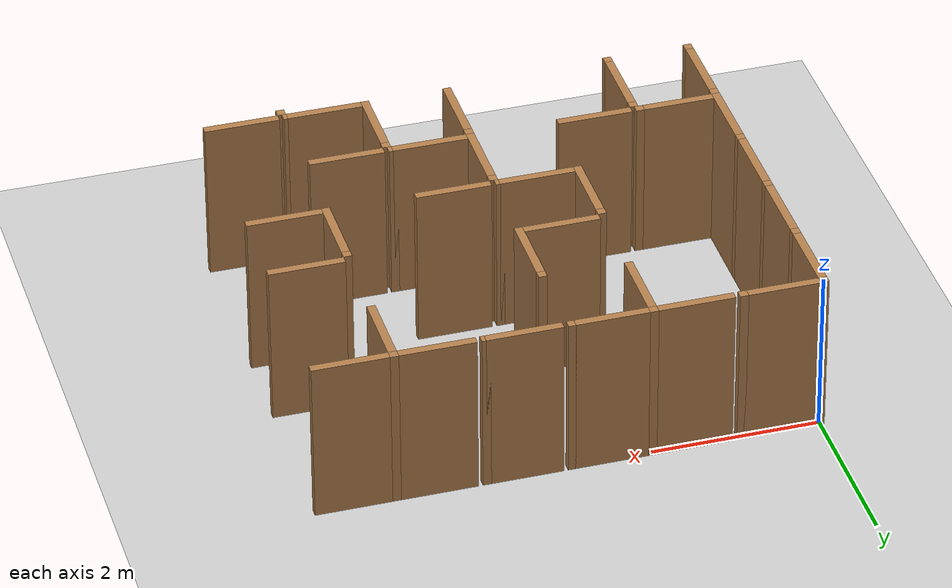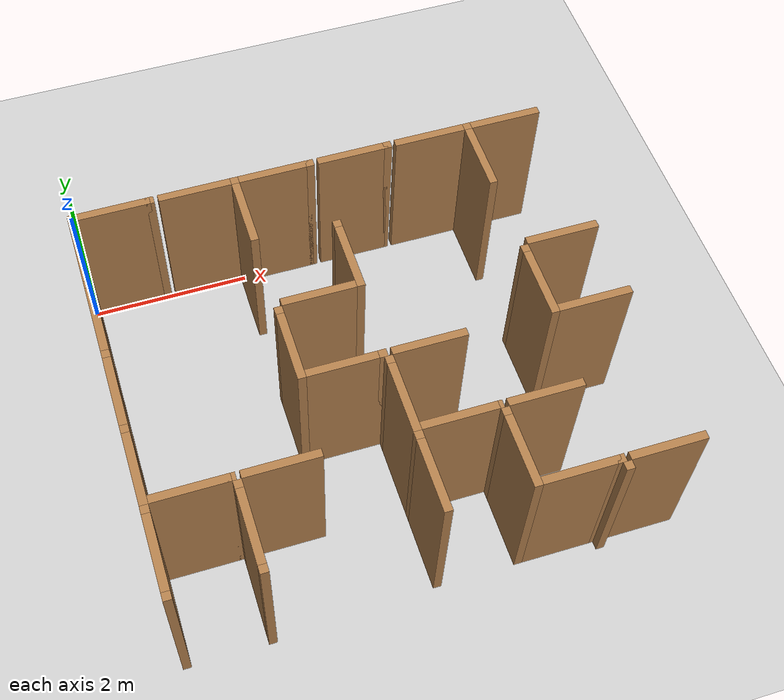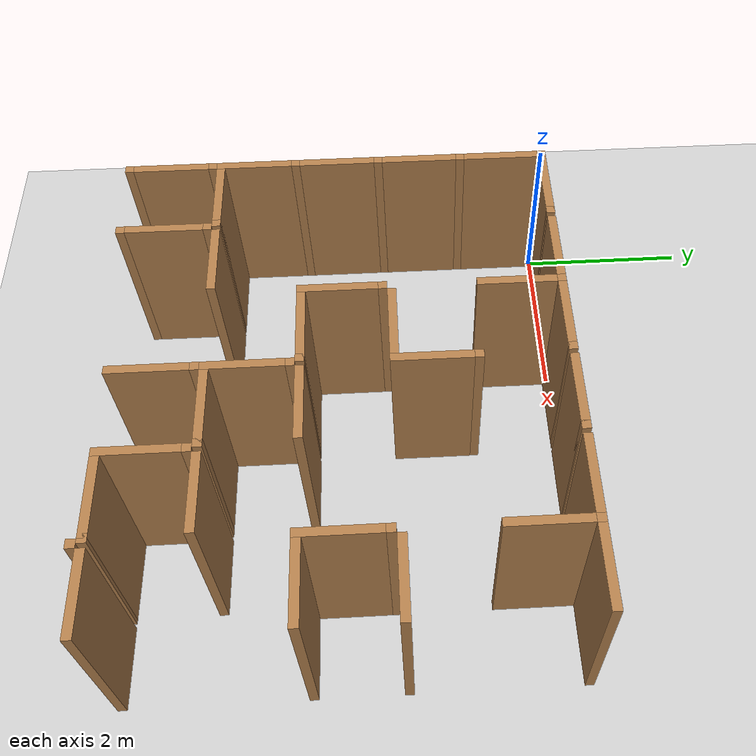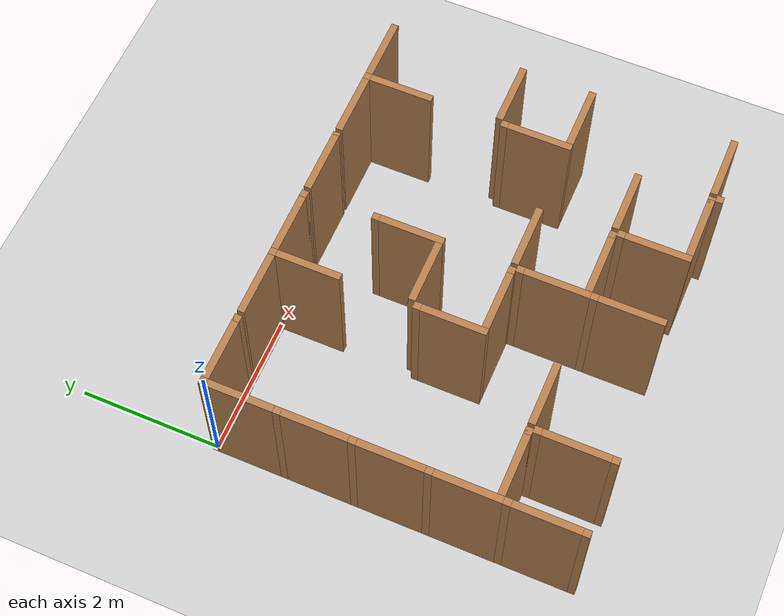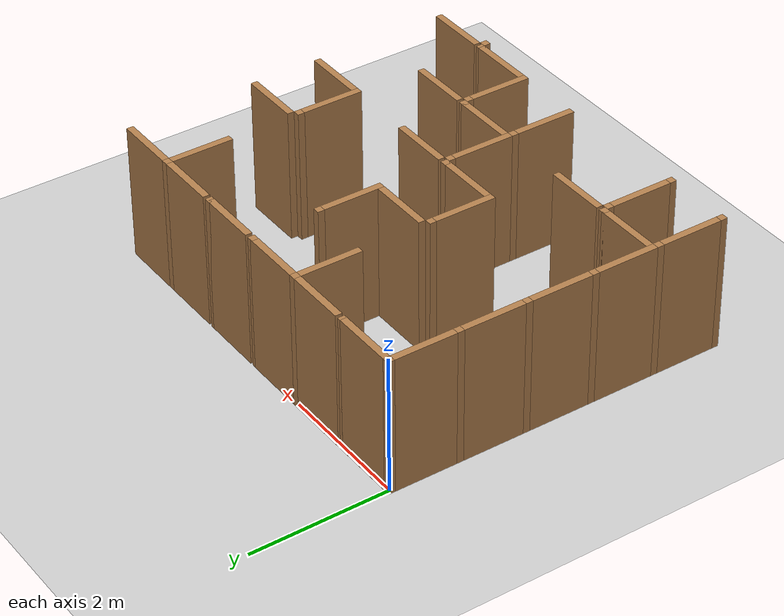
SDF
<sdf version="1.6">
 <world name="default">
  <include><uri>model://sun</uri></include>
  <model name="ground_plane">
   <static>true</static>
   <link name="link">
    <collision name="collision"><geometry><plane><size>12.0 12.0</size></plane></geometry></collision>
    <visual name="visual">
     <cast_shadows>false</cast_shadows>
     <geometry><plane><size>12.0 12.0</size></plane></geometry>
     <material>
      <script><uri>file://media/materials/scripts/gazebo.material</uri><name>Gazebo/Grey</name></script>
     </material>
    </visual>
   </link>
   <pose>6.0 -6.0 0 0 0 0</pose>
  </model>
  <model name="vwall_0_0">
   <pose>0.0 -0.5 1.0 0 0 0</pose>
   <link name="link">
    <collision name="collision"><geometry><box><size>0.1 0.9 2</size></box></geometry></collision>
    <visual name="visual">
     <geometry><box><size>0.1 0.9 2</size></box></geometry>
     <material>
      <script><uri>file://media/materials/scripts/gazebo.material</uri><name>Gazebo/Wood</name></script>
     </material>
    </visual>
   </link>
  </model>
  <model name="joint_0.0_0.0">
   <pose>0.0 0.0 1.0 0 0 0</pose>
   <link name="link">
    <collision name="collision"><geometry><box><size>0.1 0.1 2</size></box></geometry></collision>
    <visual name="visual">
     <geometry><box><size>0.1 0.1 2</size></box></geometry>
     <material>
      <script><uri>file://media/materials/scripts/gazebo.material</uri><name>Gazebo/Wood</name></script>
     </material>
    </visual>
   </link>
  </model>
  <model name="vwall_0_2">
   <pose>2.0 -0.5 1.0 0 0 0</pose>
   <link name="link">
    <collision name="collision"><geometry><box><size>0.1 0.9 2</size></box></geometry></collision>
    <visual name="visual">
     <geometry><box><size>0.1 0.9 2</size></box></geometry>
     <material>
      <script><uri>file://media/materials/scripts/gazebo.material</uri><name>Gazebo/Wood</name></script>
     </material>
    </visual>
   </link>
  </model>
  <model name="joint_2.0_0.0">
   <pose>2.0 0.0 1.0 0 0 0</pose>
   <link name="link">
    <collision name="collision"><geometry><box><size>0.1 0.1 2</size></box></geometry></collision>
    <visual name="visual">
     <geometry><box><size>0.1 0.1 2</size></box></geometry>
     <material>
      <script><uri>file://media/materials/scripts/gazebo.material</uri><name>Gazebo/Wood</name></script>
     </material>
    </visual>
   </link>
  </model>
  <model name="vwall_0_5">
   <pose>5.0 -0.5 1.0 0 0 0</pose>
   <link name="link">
    <collision name="collision"><geometry><box><size>0.1 0.9 2</size></box></geometry></collision>
    <visual name="visual">
     <geometry><box><size>0.1 0.9 2</size></box></geometry>
     <material>
      <script><uri>file://media/materials/scripts/gazebo.material</uri><name>Gazebo/Wood</name></script>
     </material>
    </visual>
   </link>
  </model>
  <model name="joint_5.0_0.0">
   <pose>5.0 0.0 1.0 0 0 0</pose>
   <link name="link">
    <collision name="collision"><geometry><box><size>0.1 0.1 2</size></box></geometry></collision>
    <visual name="visual">
     <geometry><box><size>0.1 0.1 2</size></box></geometry>
     <material>
      <script><uri>file://media/materials/scripts/gazebo.material</uri><name>Gazebo/Wood</name></script>
     </material>
    </visual>
   </link>
  </model>
  <model name="vwall_1_0">
   <pose>0.0 -1.5 1.0 0 0 0</pose>
   <link name="link">
    <collision name="collision"><geometry><box><size>0.1 0.9 2</size></box></geometry></collision>
    <visual name="visual">
     <geometry><box><size>0.1 0.9 2</size></box></geometry>
     <material>
      <script><uri>file://media/materials/scripts/gazebo.material</uri><name>Gazebo/Wood</name></script>
     </material>
    </visual>
   </link>
  </model>
  <model name="joint_0.0_-1.0">
   <pose>0.0 -1.0 1.0 0 0 0</pose>
   <link name="link">
    <collision name="collision"><geometry><box><size>0.1 0.1 2</size></box></geometry></collision>
    <visual name="visual">
     <geometry><box><size>0.1 0.1 2</size></box></geometry>
     <material>
      <script><uri>file://media/materials/scripts/gazebo.material</uri><name>Gazebo/Wood</name></script>
     </material>
    </visual>
   </link>
  </model>
  <model name="vwall_1_3">
   <pose>3.0 -1.5 1.0 0 0 0</pose>
   <link name="link">
    <collision name="collision"><geometry><box><size>0.1 0.9 2</size></box></geometry></collision>
    <visual name="visual">
     <geometry><box><size>0.1 0.9 2</size></box></geometry>
     <material>
      <script><uri>file://media/materials/scripts/gazebo.material</uri><name>Gazebo/Wood</name></script>
     </material>
    </visual>
   </link>
  </model>
  <model name="joint_3.0_-1.0">
   <pose>3.0 -1.0 1.0 0 0 0</pose>
   <link name="link">
    <collision name="collision"><geometry><box><size>0.1 0.1 2</size></box></geometry></collision>
    <visual name="visual">
     <geometry><box><size>0.1 0.1 2</size></box></geometry>
     <material>
      <script><uri>file://media/materials/scripts/gazebo.material</uri><name>Gazebo/Wood</name></script>
     </material>
    </visual>
   </link>
  </model>
  <model name="vwall_2_0">
   <pose>0.0 -2.5 1.0 0 0 0</pose>
   <link name="link">
    <collision name="collision"><geometry><box><size>0.1 0.9 2</size></box></geometry></collision>
    <visual name="visual">
     <geometry><box><size>0.1 0.9 2</size></box></geometry>
     <material>
      <script><uri>file://media/materials/scripts/gazebo.material</uri><name>Gazebo/Wood</name></script>
     </material>
    </visual>
   </link>
  </model>
  <model name="joint_0.0_-2.0">
   <pose>0.0 -2.0 1.0 0 0 0</pose>
   <link name="link">
    <collision name="collision"><geometry><box><size>0.1 0.1 2</size></box></geometry></collision>
    <visual name="visual">
     <geometry><box><size>0.1 0.1 2</size></box></geometry>
     <material>
      <script><uri>file://media/materials/scripts/gazebo.material</uri><name>Gazebo/Wood</name></script>
     </material>
    </visual>
   </link>
  </model>
  <model name="vwall_2_2">
   <pose>2.0 -2.5 1.0 0 0 0</pose>
   <link name="link">
    <collision name="collision"><geometry><box><size>0.1 0.9 2</size></box></geometry></collision>
    <visual name="visual">
     <geometry><box><size>0.1 0.9 2</size></box></geometry>
     <material>
      <script><uri>file://media/materials/scripts/gazebo.material</uri><name>Gazebo/Wood</name></script>
     </material>
    </visual>
   </link>
  </model>
  <model name="joint_2.0_-2.0">
   <pose>2.0 -2.0 1.0 0 0 0</pose>
   <link name="link">
    <collision name="collision"><geometry><box><size>0.1 0.1 2</size></box></geometry></collision>
    <visual name="visual">
     <geometry><box><size>0.1 0.1 2</size></box></geometry>
     <material>
      <script><uri>file://media/materials/scripts/gazebo.material</uri><name>Gazebo/Wood</name></script>
     </material>
    </visual>
   </link>
  </model>
  <model name="vwall_2_5">
   <pose>5.0 -2.5 1.0 0 0 0</pose>
   <link name="link">
    <collision name="collision"><geometry><box><size>0.1 0.9 2</size></box></geometry></collision>
    <visual name="visual">
     <geometry><box><size>0.1 0.9 2</size></box></geometry>
     <material>
      <script><uri>file://media/materials/scripts/gazebo.material</uri><name>Gazebo/Wood</name></script>
     </material>
    </visual>
   </link>
  </model>
  <model name="joint_5.0_-2.0">
   <pose>5.0 -2.0 1.0 0 0 0</pose>
   <link name="link">
    <collision name="collision"><geometry><box><size>0.1 0.1 2</size></box></geometry></collision>
    <visual name="visual">
     <geometry><box><size>0.1 0.1 2</size></box></geometry>
     <material>
      <script><uri>file://media/materials/scripts/gazebo.material</uri><name>Gazebo/Wood</name></script>
     </material>
    </visual>
   </link>
  </model>
  <model name="vwall_3_0">
   <pose>0.0 -3.5 1.0 0 0 0</pose>
   <link name="link">
    <collision name="collision"><geometry><box><size>0.1 0.9 2</size></box></geometry></collision>
    <visual name="visual">
     <geometry><box><size>0.1 0.9 2</size></box></geometry>
     <material>
      <script><uri>file://media/materials/scripts/gazebo.material</uri><name>Gazebo/Wood</name></script>
     </material>
    </visual>
   </link>
  </model>
  <model name="joint_0.0_-3.0">
   <pose>0.0 -3.0 1.0 0 0 0</pose>
   <link name="link">
    <collision name="collision"><geometry><box><size>0.1 0.1 2</size></box></geometry></collision>
    <visual name="visual">
     <geometry><box><size>0.1 0.1 2</size></box></geometry>
     <material>
      <script><uri>file://media/materials/scripts/gazebo.material</uri><name>Gazebo/Wood</name></script>
     </material>
    </visual>
   </link>
  </model>
  <model name="vwall_3_3">
   <pose>3.0 -3.5 1.0 0 0 0</pose>
   <link name="link">
    <collision name="collision"><geometry><box><size>0.1 0.9 2</size></box></geometry></collision>
    <visual name="visual">
     <geometry><box><size>0.1 0.9 2</size></box></geometry>
     <material>
      <script><uri>file://media/materials/scripts/gazebo.material</uri><name>Gazebo/Wood</name></script>
     </material>
    </visual>
   </link>
  </model>
  <model name="joint_3.0_-3.0">
   <pose>3.0 -3.0 1.0 0 0 0</pose>
   <link name="link">
    <collision name="collision"><geometry><box><size>0.1 0.1 2</size></box></geometry></collision>
    <visual name="visual">
     <geometry><box><size>0.1 0.1 2</size></box></geometry>
     <material>
      <script><uri>file://media/materials/scripts/gazebo.material</uri><name>Gazebo/Wood</name></script>
     </material>
    </visual>
   </link>
  </model>
  <model name="vwall_4_0">
   <pose>0.0 -4.5 1.0 0 0 0</pose>
   <link name="link">
    <collision name="collision"><geometry><box><size>0.1 0.9 2</size></box></geometry></collision>
    <visual name="visual">
     <geometry><box><size>0.1 0.9 2</size></box></geometry>
     <material>
      <script><uri>file://media/materials/scripts/gazebo.material</uri><name>Gazebo/Wood</name></script>
     </material>
    </visual>
   </link>
  </model>
  <model name="joint_0.0_-4.0">
   <pose>0.0 -4.0 1.0 0 0 0</pose>
   <link name="link">
    <collision name="collision"><geometry><box><size>0.1 0.1 2</size></box></geometry></collision>
    <visual name="visual">
     <geometry><box><size>0.1 0.1 2</size></box></geometry>
     <material>
      <script><uri>file://media/materials/scripts/gazebo.material</uri><name>Gazebo/Wood</name></script>
     </material>
    </visual>
   </link>
  </model>
  <model name="vwall_4_1">
   <pose>1.0 -4.5 1.0 0 0 0</pose>
   <link name="link">
    <collision name="collision"><geometry><box><size>0.1 0.9 2</size></box></geometry></collision>
    <visual name="visual">
     <geometry><box><size>0.1 0.9 2</size></box></geometry>
     <material>
      <script><uri>file://media/materials/scripts/gazebo.material</uri><name>Gazebo/Wood</name></script>
     </material>
    </visual>
   </link>
  </model>
  <model name="joint_1.0_-4.0">
   <pose>1.0 -4.0 1.0 0 0 0</pose>
   <link name="link">
    <collision name="collision"><geometry><box><size>0.1 0.1 2</size></box></geometry></collision>
    <visual name="visual">
     <geometry><box><size>0.1 0.1 2</size></box></geometry>
     <material>
      <script><uri>file://media/materials/scripts/gazebo.material</uri><name>Gazebo/Wood</name></script>
     </material>
    </visual>
   </link>
  </model>
  <model name="vwall_4_3">
   <pose>3.0 -4.5 1.0 0 0 0</pose>
   <link name="link">
    <collision name="collision"><geometry><box><size>0.1 0.9 2</size></box></geometry></collision>
    <visual name="visual">
     <geometry><box><size>0.1 0.9 2</size></box></geometry>
     <material>
      <script><uri>file://media/materials/scripts/gazebo.material</uri><name>Gazebo/Wood</name></script>
     </material>
    </visual>
   </link>
  </model>
  <model name="joint_3.0_-4.0">
   <pose>3.0 -4.0 1.0 0 0 0</pose>
   <link name="link">
    <collision name="collision"><geometry><box><size>0.1 0.1 2</size></box></geometry></collision>
    <visual name="visual">
     <geometry><box><size>0.1 0.1 2</size></box></geometry>
     <material>
      <script><uri>file://media/materials/scripts/gazebo.material</uri><name>Gazebo/Wood</name></script>
     </material>
    </visual>
   </link>
  </model>
  <model name="vwall_4_4">
   <pose>4.0 -4.5 1.0 0 0 0</pose>
   <link name="link">
    <collision name="collision"><geometry><box><size>0.1 0.9 2</size></box></geometry></collision>
    <visual name="visual">
     <geometry><box><size>0.1 0.9 2</size></box></geometry>
     <material>
      <script><uri>file://media/materials/scripts/gazebo.material</uri><name>Gazebo/Wood</name></script>
     </material>
    </visual>
   </link>
  </model>
  <model name="joint_4.0_-4.0">
   <pose>4.0 -4.0 1.0 0 0 0</pose>
   <link name="link">
    <collision name="collision"><geometry><box><size>0.1 0.1 2</size></box></geometry></collision>
    <visual name="visual">
     <geometry><box><size>0.1 0.1 2</size></box></geometry>
     <material>
      <script><uri>file://media/materials/scripts/gazebo.material</uri><name>Gazebo/Wood</name></script>
     </material>
    </visual>
   </link>
  </model>
  <model name="joint_0.0_-5.0">
   <pose>0.0 -5.0 1.0 0 0 0</pose>
   <link name="link">
    <collision name="collision"><geometry><box><size>0.1 0.1 2</size></box></geometry></collision>
    <visual name="visual">
     <geometry><box><size>0.1 0.1 2</size></box></geometry>
     <material>
      <script><uri>file://media/materials/scripts/gazebo.material</uri><name>Gazebo/Wood</name></script>
     </material>
    </visual>
   </link>
  </model>
  <model name="joint_1.0_-5.0">
   <pose>1.0 -5.0 1.0 0 0 0</pose>
   <link name="link">
    <collision name="collision"><geometry><box><size>0.1 0.1 2</size></box></geometry></collision>
    <visual name="visual">
     <geometry><box><size>0.1 0.1 2</size></box></geometry>
     <material>
      <script><uri>file://media/materials/scripts/gazebo.material</uri><name>Gazebo/Wood</name></script>
     </material>
    </visual>
   </link>
  </model>
  <model name="joint_5.0_-5.0">
   <pose>5.0 -5.0 1.0 0 0 0</pose>
   <link name="link">
    <collision name="collision"><geometry><box><size>0.1 0.1 2</size></box></geometry></collision>
    <visual name="visual">
     <geometry><box><size>0.1 0.1 2</size></box></geometry>
     <material>
      <script><uri>file://media/materials/scripts/gazebo.material</uri><name>Gazebo/Wood</name></script>
     </material>
    </visual>
   </link>
  </model>
  <model name="hwall_0_0">
   <pose>0.5 0.0 1.0 0 0 0</pose>
   <link name="link">
    <collision name="collision"><geometry><box><size>0.9 0.1 2</size></box></geometry></collision>
    <visual name="visual">
     <geometry><box><size>0.9 0.1 2</size></box></geometry>
     <material>
      <script><uri>file://media/materials/scripts/gazebo.material</uri><name>Gazebo/Wood</name></script>
     </material>
    </visual>
   </link>
  </model>
  <model name="joint_0.95_0.0">
   <pose>0.95 0.0 1.0 0 0 0</pose>
   <link name="link">
    <collision name="collision"><geometry><box><size>0.1 0.1 2</size></box></geometry></collision>
    <visual name="visual">
     <geometry><box><size>0.1 0.1 2</size></box></geometry>
     <material>
      <script><uri>file://media/materials/scripts/gazebo.material</uri><name>Gazebo/Wood</name></script>
     </material>
    </visual>
   </link>
  </model>
  <model name="hwall_0_1">
   <pose>1.5 0.0 1.0 0 0 0</pose>
   <link name="link">
    <collision name="collision"><geometry><box><size>0.9 0.1 2</size></box></geometry></collision>
    <visual name="visual">
     <geometry><box><size>0.9 0.1 2</size></box></geometry>
     <material>
      <script><uri>file://media/materials/scripts/gazebo.material</uri><name>Gazebo/Wood</name></script>
     </material>
    </visual>
   </link>
  </model>
  <model name="hwall_0_2">
   <pose>2.5 0.0 1.0 0 0 0</pose>
   <link name="link">
    <collision name="collision"><geometry><box><size>0.9 0.1 2</size></box></geometry></collision>
    <visual name="visual">
     <geometry><box><size>0.9 0.1 2</size></box></geometry>
     <material>
      <script><uri>file://media/materials/scripts/gazebo.material</uri><name>Gazebo/Wood</name></script>
     </material>
    </visual>
   </link>
  </model>
  <model name="joint_2.95_0.0">
   <pose>2.95 0.0 1.0 0 0 0</pose>
   <link name="link">
    <collision name="collision"><geometry><box><size>0.1 0.1 2</size></box></geometry></collision>
    <visual name="visual">
     <geometry><box><size>0.1 0.1 2</size></box></geometry>
     <material>
      <script><uri>file://media/materials/scripts/gazebo.material</uri><name>Gazebo/Wood</name></script>
     </material>
    </visual>
   </link>
  </model>
  <model name="hwall_0_3">
   <pose>3.5 0.0 1.0 0 0 0</pose>
   <link name="link">
    <collision name="collision"><geometry><box><size>0.9 0.1 2</size></box></geometry></collision>
    <visual name="visual">
     <geometry><box><size>0.9 0.1 2</size></box></geometry>
     <material>
      <script><uri>file://media/materials/scripts/gazebo.material</uri><name>Gazebo/Wood</name></script>
     </material>
    </visual>
   </link>
  </model>
  <model name="joint_3.95_0.0">
   <pose>3.95 0.0 1.0 0 0 0</pose>
   <link name="link">
    <collision name="collision"><geometry><box><size>0.1 0.1 2</size></box></geometry></collision>
    <visual name="visual">
     <geometry><box><size>0.1 0.1 2</size></box></geometry>
     <material>
      <script><uri>file://media/materials/scripts/gazebo.material</uri><name>Gazebo/Wood</name></script>
     </material>
    </visual>
   </link>
  </model>
  <model name="hwall_0_4">
   <pose>4.5 0.0 1.0 0 0 0</pose>
   <link name="link">
    <collision name="collision"><geometry><box><size>0.9 0.1 2</size></box></geometry></collision>
    <visual name="visual">
     <geometry><box><size>0.9 0.1 2</size></box></geometry>
     <material>
      <script><uri>file://media/materials/scripts/gazebo.material</uri><name>Gazebo/Wood</name></script>
     </material>
    </visual>
   </link>
  </model>
  <model name="hwall_0_5">
   <pose>5.5 0.0 1.0 0 0 0</pose>
   <link name="link">
    <collision name="collision"><geometry><box><size>0.9 0.1 2</size></box></geometry></collision>
    <visual name="visual">
     <geometry><box><size>0.9 0.1 2</size></box></geometry>
     <material>
      <script><uri>file://media/materials/scripts/gazebo.material</uri><name>Gazebo/Wood</name></script>
     </material>
    </visual>
   </link>
  </model>
  <model name="hwall_1_2">
   <pose>2.5 -1.9 1.0 0 0 0</pose>
   <link name="link">
    <collision name="collision"><geometry><box><size>0.9 0.1 2</size></box></geometry></collision>
    <visual name="visual">
     <geometry><box><size>0.9 0.1 2</size></box></geometry>
     <material>
      <script><uri>file://media/materials/scripts/gazebo.material</uri><name>Gazebo/Wood</name></script>
     </material>
    </visual>
   </link>
  </model>
  <model name="hwall_1_5">
   <pose>5.5 -1.9 1.0 0 0 0</pose>
   <link name="link">
    <collision name="collision"><geometry><box><size>0.9 0.1 2</size></box></geometry></collision>
    <visual name="visual">
     <geometry><box><size>0.9 0.1 2</size></box></geometry>
     <material>
      <script><uri>file://media/materials/scripts/gazebo.material</uri><name>Gazebo/Wood</name></script>
     </material>
    </visual>
   </link>
  </model>
  <model name="hwall_2_2">
   <pose>2.5 -2.9 1.0 0 0 0</pose>
   <link name="link">
    <collision name="collision"><geometry><box><size>0.9 0.1 2</size></box></geometry></collision>
    <visual name="visual">
     <geometry><box><size>0.9 0.1 2</size></box></geometry>
     <material>
      <script><uri>file://media/materials/scripts/gazebo.material</uri><name>Gazebo/Wood</name></script>
     </material>
    </visual>
   </link>
  </model>
  <model name="joint_2.95_-2.9">
   <pose>2.95 -2.9 1.0 0 0 0</pose>
   <link name="link">
    <collision name="collision"><geometry><box><size>0.1 0.1 2</size></box></geometry></collision>
    <visual name="visual">
     <geometry><box><size>0.1 0.1 2</size></box></geometry>
     <material>
      <script><uri>file://media/materials/scripts/gazebo.material</uri><name>Gazebo/Wood</name></script>
     </material>
    </visual>
   </link>
  </model>
  <model name="hwall_2_3">
   <pose>3.5 -2.9 1.0 0 0 0</pose>
   <link name="link">
    <collision name="collision"><geometry><box><size>0.9 0.1 2</size></box></geometry></collision>
    <visual name="visual">
     <geometry><box><size>0.9 0.1 2</size></box></geometry>
     <material>
      <script><uri>file://media/materials/scripts/gazebo.material</uri><name>Gazebo/Wood</name></script>
     </material>
    </visual>
   </link>
  </model>
  <model name="hwall_2_5">
   <pose>5.5 -2.9 1.0 0 0 0</pose>
   <link name="link">
    <collision name="collision"><geometry><box><size>0.9 0.1 2</size></box></geometry></collision>
    <visual name="visual">
     <geometry><box><size>0.9 0.1 2</size></box></geometry>
     <material>
      <script><uri>file://media/materials/scripts/gazebo.material</uri><name>Gazebo/Wood</name></script>
     </material>
    </visual>
   </link>
  </model>
  <model name="hwall_3_0">
   <pose>0.5 -3.9 1.0 0 0 0</pose>
   <link name="link">
    <collision name="collision"><geometry><box><size>0.9 0.1 2</size></box></geometry></collision>
    <visual name="visual">
     <geometry><box><size>0.9 0.1 2</size></box></geometry>
     <material>
      <script><uri>file://media/materials/scripts/gazebo.material</uri><name>Gazebo/Wood</name></script>
     </material>
    </visual>
   </link>
  </model>
  <model name="joint_0.95_-3.9">
   <pose>0.95 -3.9 1.0 0 0 0</pose>
   <link name="link">
    <collision name="collision"><geometry><box><size>0.1 0.1 2</size></box></geometry></collision>
    <visual name="visual">
     <geometry><box><size>0.1 0.1 2</size></box></geometry>
     <material>
      <script><uri>file://media/materials/scripts/gazebo.material</uri><name>Gazebo/Wood</name></script>
     </material>
    </visual>
   </link>
  </model>
  <model name="hwall_3_1">
   <pose>1.5 -3.9 1.0 0 0 0</pose>
   <link name="link">
    <collision name="collision"><geometry><box><size>0.9 0.1 2</size></box></geometry></collision>
    <visual name="visual">
     <geometry><box><size>0.9 0.1 2</size></box></geometry>
     <material>
      <script><uri>file://media/materials/scripts/gazebo.material</uri><name>Gazebo/Wood</name></script>
     </material>
    </visual>
   </link>
  </model>
  <model name="hwall_3_3">
   <pose>3.5 -3.9 1.0 0 0 0</pose>
   <link name="link">
    <collision name="collision"><geometry><box><size>0.9 0.1 2</size></box></geometry></collision>
    <visual name="visual">
     <geometry><box><size>0.9 0.1 2</size></box></geometry>
     <material>
      <script><uri>file://media/materials/scripts/gazebo.material</uri><name>Gazebo/Wood</name></script>
     </material>
    </visual>
   </link>
  </model>
  <model name="joint_3.95_-3.9">
   <pose>3.95 -3.9 1.0 0 0 0</pose>
   <link name="link">
    <collision name="collision"><geometry><box><size>0.1 0.1 2</size></box></geometry></collision>
    <visual name="visual">
     <geometry><box><size>0.1 0.1 2</size></box></geometry>
     <material>
      <script><uri>file://media/materials/scripts/gazebo.material</uri><name>Gazebo/Wood</name></script>
     </material>
    </visual>
   </link>
  </model>
  <model name="hwall_3_4">
   <pose>4.5 -3.9 1.0 0 0 0</pose>
   <link name="link">
    <collision name="collision"><geometry><box><size>0.9 0.1 2</size></box></geometry></collision>
    <visual name="visual">
     <geometry><box><size>0.9 0.1 2</size></box></geometry>
     <material>
      <script><uri>file://media/materials/scripts/gazebo.material</uri><name>Gazebo/Wood</name></script>
     </material>
    </visual>
   </link>
  </model>
  <model name="hwall_4_4">
   <pose>4.5 -4.9 1.0 0 0 0</pose>
   <link name="link">
    <collision name="collision"><geometry><box><size>0.9 0.1 2</size></box></geometry></collision>
    <visual name="visual">
     <geometry><box><size>0.9 0.1 2</size></box></geometry>
     <material>
      <script><uri>file://media/materials/scripts/gazebo.material</uri><name>Gazebo/Wood</name></script>
     </material>
    </visual>
   </link>
  </model>
  <model name="joint_4.95_-4.9">
   <pose>4.95 -4.9 1.0 0 0 0</pose>
   <link name="link">
    <collision name="collision"><geometry><box><size>0.1 0.1 2</size></box></geometry></collision>
    <visual name="visual">
     <geometry><box><size>0.1 0.1 2</size></box></geometry>
     <material>
      <script><uri>file://media/materials/scripts/gazebo.material</uri><name>Gazebo/Wood</name></script>
     </material>
    </visual>
   </link>
  </model>
  <model name="hwall_4_5">
   <pose>5.5 -4.9 1.0 0 0 0</pose>
   <link name="link">
    <collision name="collision"><geometry><box><size>0.9 0.1 2</size></box></geometry></collision>
    <visual name="visual">
     <geometry><box><size>0.9 0.1 2</size></box></geometry>
     <material>
      <script><uri>file://media/materials/scripts/gazebo.material</uri><name>Gazebo/Wood</name></script>
     </material>
    </visual>
   </link>
  </model>
 </world>
</sdf>
